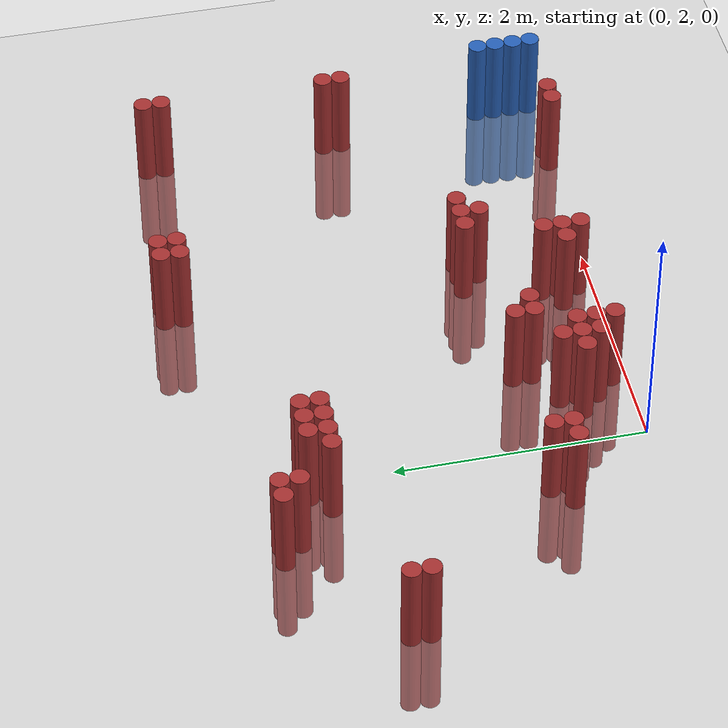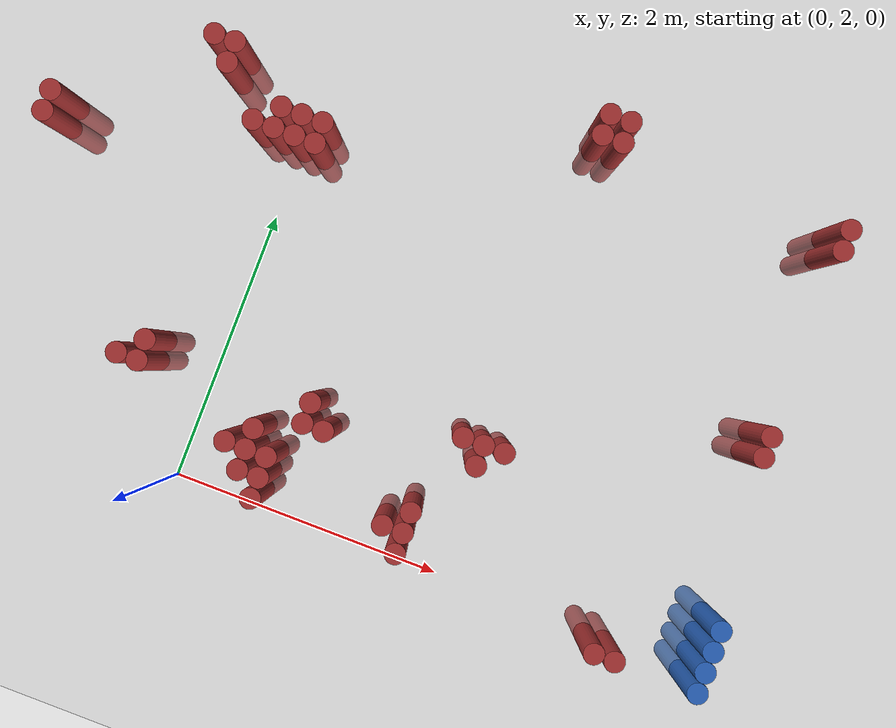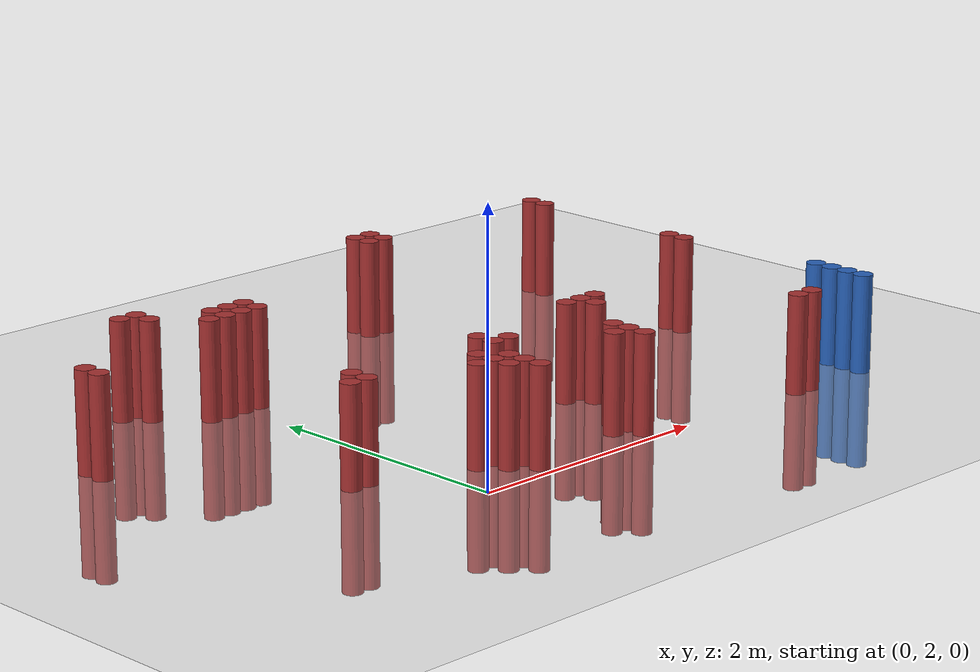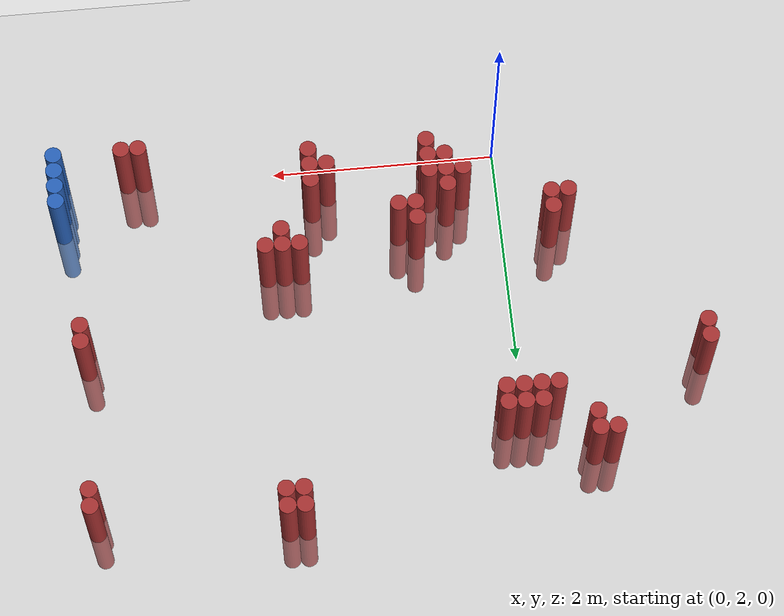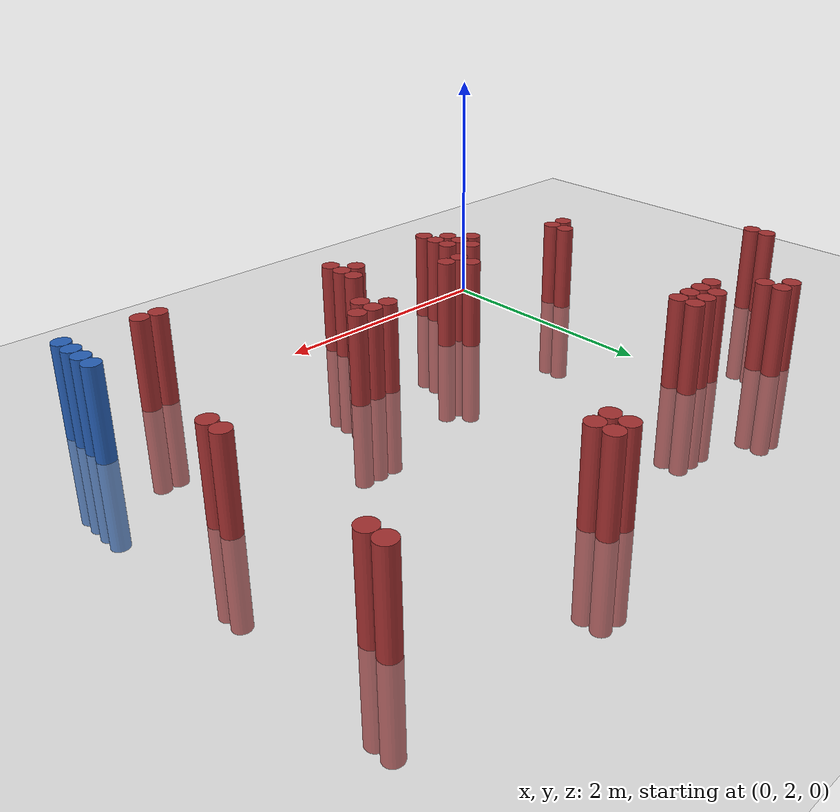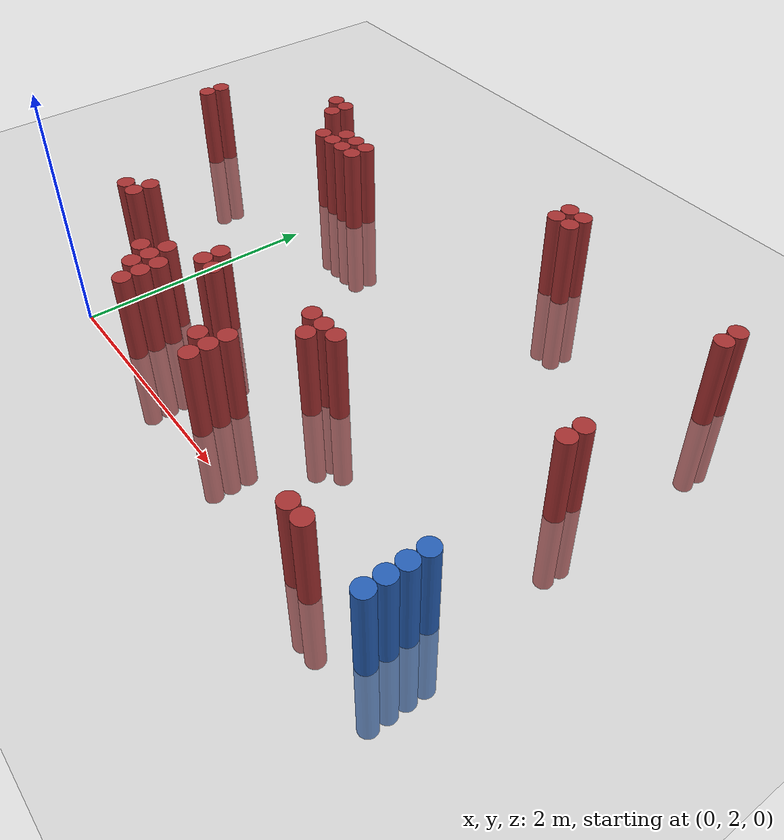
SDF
<sdf version="1.6">
 <world name="default">
  <model name="ground_plane">
   <static>1</static>
   <link name="link">
    <collision name="collision">
     <geometry><plane><normal>0 0 1</normal><size>100 100</size></plane></geometry>
     <surface><friction><ode><mu>100</mu><mu2>50</mu2></ode></friction></surface>
    </collision>
    <visual name="visual">
     <cast_shadows>0</cast_shadows>
     <geometry><plane><normal>0 0 1</normal><size>100 100</size></plane></geometry>
     <material>
      <script><uri>file://media/materials/scripts/gazebo.material</uri><name>Gazebo/Grey</name></script>
     </material>
    </visual>
   </link>
  </model>
  <model name="unit_cylinder_140">
   <static>1</static>
   <pose>3.925000 1.975000 0.000000 0.000000 0.000000 0.000000</pose>
   <link name="link">
    <inertial>
     <mass>1</mass>
     <inertia><ixx>0.145833</ixx><ixy>0</ixy><ixz>0</ixz><iyy>0.145833</iyy><iyz>0</iyz><izz>0.125</izz></inertia>
    </inertial>
    <collision name="collision">
     <geometry><cylinder><radius>0.075000</radius><length>1.5</length></cylinder></geometry>
    </collision>
    <visual name="visual">
     <geometry><cylinder><radius>0.075000</radius><length>1.5</length></cylinder></geometry>
     <material>
      <ambient>0.152000 0.379000 0.720000 1</ambient>
      <diffuse>0.152000 0.379000 0.720000 1</diffuse>
     </material>
     <material>
      <script><name>Gazebo/Grey</name><uri>file://media/materials/scripts/gazebo.material</uri></script>
     </material>
    </visual>
   </link>
  </model>
  <model name="unit_cylinder_142">
   <static>1</static>
   <pose>3.925000 2.125000 0.000000 0.000000 0.000000 0.000000</pose>
   <link name="link">
    <inertial>
     <mass>1</mass>
     <inertia><ixx>0.145833</ixx><ixy>0</ixy><ixz>0</ixz><iyy>0.145833</iyy><iyz>0</iyz><izz>0.125</izz></inertia>
    </inertial>
    <collision name="collision">
     <geometry><cylinder><radius>0.075000</radius><length>1.5</length></cylinder></geometry>
    </collision>
    <visual name="visual">
     <geometry><cylinder><radius>0.075000</radius><length>1.5</length></cylinder></geometry>
     <material>
      <ambient>0.152000 0.379000 0.720000 1</ambient>
      <diffuse>0.152000 0.379000 0.720000 1</diffuse>
     </material>
     <material>
      <script><name>Gazebo/Grey</name><uri>file://media/materials/scripts/gazebo.material</uri></script>
     </material>
    </visual>
   </link>
  </model>
  <model name="unit_cylinder_144">
   <static>1</static>
   <pose>3.925000 2.275000 0.000000 0.000000 0.000000 0.000000</pose>
   <link name="link">
    <inertial>
     <mass>1</mass>
     <inertia><ixx>0.145833</ixx><ixy>0</ixy><ixz>0</ixz><iyy>0.145833</iyy><iyz>0</iyz><izz>0.125</izz></inertia>
    </inertial>
    <collision name="collision">
     <geometry><cylinder><radius>0.075000</radius><length>1.5</length></cylinder></geometry>
    </collision>
    <visual name="visual">
     <geometry><cylinder><radius>0.075000</radius><length>1.5</length></cylinder></geometry>
     <material>
      <ambient>0.152000 0.379000 0.720000 1</ambient>
      <diffuse>0.152000 0.379000 0.720000 1</diffuse>
     </material>
     <material>
      <script><name>Gazebo/Grey</name><uri>file://media/materials/scripts/gazebo.material</uri></script>
     </material>
    </visual>
   </link>
  </model>
  <model name="unit_cylinder_146">
   <static>1</static>
   <pose>3.925000 2.425000 0.000000 0.000000 0.000000 0.000000</pose>
   <link name="link">
    <inertial>
     <mass>1</mass>
     <inertia><ixx>0.145833</ixx><ixy>0</ixy><ixz>0</ixz><iyy>0.145833</iyy><iyz>0</iyz><izz>0.125</izz></inertia>
    </inertial>
    <collision name="collision">
     <geometry><cylinder><radius>0.075000</radius><length>1.5</length></cylinder></geometry>
    </collision>
    <visual name="visual">
     <geometry><cylinder><radius>0.075000</radius><length>1.5</length></cylinder></geometry>
     <material>
      <ambient>0.152000 0.379000 0.720000 1</ambient>
      <diffuse>0.152000 0.379000 0.720000 1</diffuse>
     </material>
     <material>
      <script><name>Gazebo/Grey</name><uri>file://media/materials/scripts/gazebo.material</uri></script>
     </material>
    </visual>
   </link>
  </model>
  <model name="unit_cylinder_312">
   <static>1</static>
   <pose>-1.625000 4.075000 0.000000 0.000000 0.000000 0.000000</pose>
   <link name="link">
    <inertial>
     <mass>1</mass>
     <inertia><ixx>0.145833</ixx><ixy>0</ixy><ixz>0</ixz><iyy>0.145833</iyy><iyz>0</iyz><izz>0.125</izz></inertia>
    </inertial>
    <collision name="collision">
     <geometry><cylinder><radius>0.075000</radius><length>1.5</length></cylinder></geometry>
    </collision>
    <visual name="visual">
     <geometry><cylinder><radius>0.075000</radius><length>1.5</length></cylinder></geometry>
     <material>
      <ambient>0.648000 0.192000 0.192000 1</ambient>
      <diffuse>0.648000 0.192000 0.192000 1</diffuse>
     </material>
     <material>
      <script><name>Gazebo/Grey</name><uri>file://media/materials/scripts/gazebo.material</uri></script>
     </material>
    </visual>
   </link>
  </model>
  <model name="unit_cylinder_313">
   <static>1</static>
   <pose>-1.625000 4.225000 0.000000 0.000000 0.000000 0.000000</pose>
   <link name="link">
    <inertial>
     <mass>1</mass>
     <inertia><ixx>0.145833</ixx><ixy>0</ixy><ixz>0</ixz><iyy>0.145833</iyy><iyz>0</iyz><izz>0.125</izz></inertia>
    </inertial>
    <collision name="collision">
     <geometry><cylinder><radius>0.075000</radius><length>1.5</length></cylinder></geometry>
    </collision>
    <visual name="visual">
     <geometry><cylinder><radius>0.075000</radius><length>1.5</length></cylinder></geometry>
     <material>
      <ambient>0.648000 0.192000 0.192000 1</ambient>
      <diffuse>0.648000 0.192000 0.192000 1</diffuse>
     </material>
     <material>
      <script><name>Gazebo/Grey</name><uri>file://media/materials/scripts/gazebo.material</uri></script>
     </material>
    </visual>
   </link>
  </model>
  <model name="unit_cylinder_315">
   <static>1</static>
   <pose>-0.725000 4.975000 0.000000 0.000000 0.000000 0.000000</pose>
   <link name="link">
    <inertial>
     <mass>1</mass>
     <inertia><ixx>0.145833</ixx><ixy>0</ixy><ixz>0</ixz><iyy>0.145833</iyy><iyz>0</iyz><izz>0.125</izz></inertia>
    </inertial>
    <collision name="collision">
     <geometry><cylinder><radius>0.075000</radius><length>1.5</length></cylinder></geometry>
    </collision>
    <visual name="visual">
     <geometry><cylinder><radius>0.075000</radius><length>1.5</length></cylinder></geometry>
     <material>
      <ambient>0.648000 0.192000 0.192000 1</ambient>
      <diffuse>0.648000 0.192000 0.192000 1</diffuse>
     </material>
     <material>
      <script><name>Gazebo/Grey</name><uri>file://media/materials/scripts/gazebo.material</uri></script>
     </material>
    </visual>
   </link>
  </model>
  <model name="unit_cylinder_316">
   <static>1</static>
   <pose>-0.575000 2.725000 0.000000 0.000000 0.000000 0.000000</pose>
   <link name="link">
    <inertial>
     <mass>1</mass>
     <inertia><ixx>0.145833</ixx><ixy>0</ixy><ixz>0</ixz><iyy>0.145833</iyy><iyz>0</iyz><izz>0.125</izz></inertia>
    </inertial>
    <collision name="collision">
     <geometry><cylinder><radius>0.075000</radius><length>1.5</length></cylinder></geometry>
    </collision>
    <visual name="visual">
     <geometry><cylinder><radius>0.075000</radius><length>1.5</length></cylinder></geometry>
     <material>
      <ambient>0.648000 0.192000 0.192000 1</ambient>
      <diffuse>0.648000 0.192000 0.192000 1</diffuse>
     </material>
     <material>
      <script><name>Gazebo/Grey</name><uri>file://media/materials/scripts/gazebo.material</uri></script>
     </material>
    </visual>
   </link>
  </model>
  <model name="unit_cylinder_317">
   <static>1</static>
   <pose>-0.575000 4.825000 0.000000 0.000000 0.000000 0.000000</pose>
   <link name="link">
    <inertial>
     <mass>1</mass>
     <inertia><ixx>0.145833</ixx><ixy>0</ixy><ixz>0</ixz><iyy>0.145833</iyy><iyz>0</iyz><izz>0.125</izz></inertia>
    </inertial>
    <collision name="collision">
     <geometry><cylinder><radius>0.075000</radius><length>1.5</length></cylinder></geometry>
    </collision>
    <visual name="visual">
     <geometry><cylinder><radius>0.075000</radius><length>1.5</length></cylinder></geometry>
     <material>
      <ambient>0.648000 0.192000 0.192000 1</ambient>
      <diffuse>0.648000 0.192000 0.192000 1</diffuse>
     </material>
     <material>
      <script><name>Gazebo/Grey</name><uri>file://media/materials/scripts/gazebo.material</uri></script>
     </material>
    </visual>
   </link>
  </model>
  <model name="unit_cylinder_318">
   <static>1</static>
   <pose>-0.575000 4.975000 0.000000 0.000000 0.000000 0.000000</pose>
   <link name="link">
    <inertial>
     <mass>1</mass>
     <inertia><ixx>0.145833</ixx><ixy>0</ixy><ixz>0</ixz><iyy>0.145833</iyy><iyz>0</iyz><izz>0.125</izz></inertia>
    </inertial>
    <collision name="collision">
     <geometry><cylinder><radius>0.075000</radius><length>1.5</length></cylinder></geometry>
    </collision>
    <visual name="visual">
     <geometry><cylinder><radius>0.075000</radius><length>1.5</length></cylinder></geometry>
     <material>
      <ambient>0.648000 0.192000 0.192000 1</ambient>
      <diffuse>0.648000 0.192000 0.192000 1</diffuse>
     </material>
     <material>
      <script><name>Gazebo/Grey</name><uri>file://media/materials/scripts/gazebo.material</uri></script>
     </material>
    </visual>
   </link>
  </model>
  <model name="unit_cylinder_319">
   <static>1</static>
   <pose>-0.425000 2.725000 0.000000 0.000000 0.000000 0.000000</pose>
   <link name="link">
    <inertial>
     <mass>1</mass>
     <inertia><ixx>0.145833</ixx><ixy>0</ixy><ixz>0</ixz><iyy>0.145833</iyy><iyz>0</iyz><izz>0.125</izz></inertia>
    </inertial>
    <collision name="collision">
     <geometry><cylinder><radius>0.075000</radius><length>1.5</length></cylinder></geometry>
    </collision>
    <visual name="visual">
     <geometry><cylinder><radius>0.075000</radius><length>1.5</length></cylinder></geometry>
     <material>
      <ambient>0.648000 0.192000 0.192000 1</ambient>
      <diffuse>0.648000 0.192000 0.192000 1</diffuse>
     </material>
     <material>
      <script><name>Gazebo/Grey</name><uri>file://media/materials/scripts/gazebo.material</uri></script>
     </material>
    </visual>
   </link>
  </model>
  <model name="unit_cylinder_320">
   <static>1</static>
   <pose>-0.425000 2.875000 0.000000 0.000000 0.000000 0.000000</pose>
   <link name="link">
    <inertial>
     <mass>1</mass>
     <inertia><ixx>0.145833</ixx><ixy>0</ixy><ixz>0</ixz><iyy>0.145833</iyy><iyz>0</iyz><izz>0.125</izz></inertia>
    </inertial>
    <collision name="collision">
     <geometry><cylinder><radius>0.075000</radius><length>1.5</length></cylinder></geometry>
    </collision>
    <visual name="visual">
     <geometry><cylinder><radius>0.075000</radius><length>1.5</length></cylinder></geometry>
     <material>
      <ambient>0.648000 0.192000 0.192000 1</ambient>
      <diffuse>0.648000 0.192000 0.192000 1</diffuse>
     </material>
     <material>
      <script><name>Gazebo/Grey</name><uri>file://media/materials/scripts/gazebo.material</uri></script>
     </material>
    </visual>
   </link>
  </model>
  <model name="unit_cylinder_321">
   <static>1</static>
   <pose>-0.275000 4.525000 0.000000 0.000000 0.000000 0.000000</pose>
   <link name="link">
    <inertial>
     <mass>1</mass>
     <inertia><ixx>0.145833</ixx><ixy>0</ixy><ixz>0</ixz><iyy>0.145833</iyy><iyz>0</iyz><izz>0.125</izz></inertia>
    </inertial>
    <collision name="collision">
     <geometry><cylinder><radius>0.075000</radius><length>1.5</length></cylinder></geometry>
    </collision>
    <visual name="visual">
     <geometry><cylinder><radius>0.075000</radius><length>1.5</length></cylinder></geometry>
     <material>
      <ambient>0.648000 0.192000 0.192000 1</ambient>
      <diffuse>0.648000 0.192000 0.192000 1</diffuse>
     </material>
     <material>
      <script><name>Gazebo/Grey</name><uri>file://media/materials/scripts/gazebo.material</uri></script>
     </material>
    </visual>
   </link>
  </model>
  <model name="unit_cylinder_322">
   <static>1</static>
   <pose>-0.125000 4.525000 0.000000 0.000000 0.000000 0.000000</pose>
   <link name="link">
    <inertial>
     <mass>1</mass>
     <inertia><ixx>0.145833</ixx><ixy>0</ixy><ixz>0</ixz><iyy>0.145833</iyy><iyz>0</iyz><izz>0.125</izz></inertia>
    </inertial>
    <collision name="collision">
     <geometry><cylinder><radius>0.075000</radius><length>1.5</length></cylinder></geometry>
    </collision>
    <visual name="visual">
     <geometry><cylinder><radius>0.075000</radius><length>1.5</length></cylinder></geometry>
     <material>
      <ambient>0.648000 0.192000 0.192000 1</ambient>
      <diffuse>0.648000 0.192000 0.192000 1</diffuse>
     </material>
     <material>
      <script><name>Gazebo/Grey</name><uri>file://media/materials/scripts/gazebo.material</uri></script>
     </material>
    </visual>
   </link>
  </model>
  <model name="unit_cylinder_323">
   <static>1</static>
   <pose>-0.125000 4.675000 0.000000 0.000000 0.000000 0.000000</pose>
   <link name="link">
    <inertial>
     <mass>1</mass>
     <inertia><ixx>0.145833</ixx><ixy>0</ixy><ixz>0</ixz><iyy>0.145833</iyy><iyz>0</iyz><izz>0.125</izz></inertia>
    </inertial>
    <collision name="collision">
     <geometry><cylinder><radius>0.075000</radius><length>1.5</length></cylinder></geometry>
    </collision>
    <visual name="visual">
     <geometry><cylinder><radius>0.075000</radius><length>1.5</length></cylinder></geometry>
     <material>
      <ambient>0.648000 0.192000 0.192000 1</ambient>
      <diffuse>0.648000 0.192000 0.192000 1</diffuse>
     </material>
     <material>
      <script><name>Gazebo/Grey</name><uri>file://media/materials/scripts/gazebo.material</uri></script>
     </material>
    </visual>
   </link>
  </model>
  <model name="unit_cylinder_325">
   <static>1</static>
   <pose>0.025000 4.525000 0.000000 0.000000 0.000000 0.000000</pose>
   <link name="link">
    <inertial>
     <mass>1</mass>
     <inertia><ixx>0.145833</ixx><ixy>0</ixy><ixz>0</ixz><iyy>0.145833</iyy><iyz>0</iyz><izz>0.125</izz></inertia>
    </inertial>
    <collision name="collision">
     <geometry><cylinder><radius>0.075000</radius><length>1.5</length></cylinder></geometry>
    </collision>
    <visual name="visual">
     <geometry><cylinder><radius>0.075000</radius><length>1.5</length></cylinder></geometry>
     <material>
      <ambient>0.648000 0.192000 0.192000 1</ambient>
      <diffuse>0.648000 0.192000 0.192000 1</diffuse>
     </material>
     <material>
      <script><name>Gazebo/Grey</name><uri>file://media/materials/scripts/gazebo.material</uri></script>
     </material>
    </visual>
   </link>
  </model>
  <model name="unit_cylinder_326">
   <static>1</static>
   <pose>0.025000 4.675000 0.000000 0.000000 0.000000 0.000000</pose>
   <link name="link">
    <inertial>
     <mass>1</mass>
     <inertia><ixx>0.145833</ixx><ixy>0</ixy><ixz>0</ixz><iyy>0.145833</iyy><iyz>0</iyz><izz>0.125</izz></inertia>
    </inertial>
    <collision name="collision">
     <geometry><cylinder><radius>0.075000</radius><length>1.5</length></cylinder></geometry>
    </collision>
    <visual name="visual">
     <geometry><cylinder><radius>0.075000</radius><length>1.5</length></cylinder></geometry>
     <material>
      <ambient>0.648000 0.192000 0.192000 1</ambient>
      <diffuse>0.648000 0.192000 0.192000 1</diffuse>
     </material>
     <material>
      <script><name>Gazebo/Grey</name><uri>file://media/materials/scripts/gazebo.material</uri></script>
     </material>
    </visual>
   </link>
  </model>
  <model name="unit_cylinder_329">
   <static>1</static>
   <pose>0.175000 4.525000 0.000000 0.000000 0.000000 0.000000</pose>
   <link name="link">
    <inertial>
     <mass>1</mass>
     <inertia><ixx>0.145833</ixx><ixy>0</ixy><ixz>0</ixz><iyy>0.145833</iyy><iyz>0</iyz><izz>0.125</izz></inertia>
    </inertial>
    <collision name="collision">
     <geometry><cylinder><radius>0.075000</radius><length>1.5</length></cylinder></geometry>
    </collision>
    <visual name="visual">
     <geometry><cylinder><radius>0.075000</radius><length>1.5</length></cylinder></geometry>
     <material>
      <ambient>0.648000 0.192000 0.192000 1</ambient>
      <diffuse>0.648000 0.192000 0.192000 1</diffuse>
     </material>
     <material>
      <script><name>Gazebo/Grey</name><uri>file://media/materials/scripts/gazebo.material</uri></script>
     </material>
    </visual>
   </link>
  </model>
  <model name="unit_cylinder_330">
   <static>1</static>
   <pose>0.175000 4.675000 0.000000 0.000000 0.000000 0.000000</pose>
   <link name="link">
    <inertial>
     <mass>1</mass>
     <inertia><ixx>0.145833</ixx><ixy>0</ixy><ixz>0</ixz><iyy>0.145833</iyy><iyz>0</iyz><izz>0.125</izz></inertia>
    </inertial>
    <collision name="collision">
     <geometry><cylinder><radius>0.075000</radius><length>1.5</length></cylinder></geometry>
    </collision>
    <visual name="visual">
     <geometry><cylinder><radius>0.075000</radius><length>1.5</length></cylinder></geometry>
     <material>
      <ambient>0.648000 0.192000 0.192000 1</ambient>
      <diffuse>0.648000 0.192000 0.192000 1</diffuse>
     </material>
     <material>
      <script><name>Gazebo/Grey</name><uri>file://media/materials/scripts/gazebo.material</uri></script>
     </material>
    </visual>
   </link>
  </model>
  <model name="unit_cylinder_331">
   <static>1</static>
   <pose>0.325000 2.425000 0.000000 0.000000 0.000000 0.000000</pose>
   <link name="link">
    <inertial>
     <mass>1</mass>
     <inertia><ixx>0.145833</ixx><ixy>0</ixy><ixz>0</ixz><iyy>0.145833</iyy><iyz>0</iyz><izz>0.125</izz></inertia>
    </inertial>
    <collision name="collision">
     <geometry><cylinder><radius>0.075000</radius><length>1.5</length></cylinder></geometry>
    </collision>
    <visual name="visual">
     <geometry><cylinder><radius>0.075000</radius><length>1.5</length></cylinder></geometry>
     <material>
      <ambient>0.648000 0.192000 0.192000 1</ambient>
      <diffuse>0.648000 0.192000 0.192000 1</diffuse>
     </material>
     <material>
      <script><name>Gazebo/Grey</name><uri>file://media/materials/scripts/gazebo.material</uri></script>
     </material>
    </visual>
   </link>
  </model>
  <model name="unit_cylinder_332">
   <static>1</static>
   <pose>0.475000 2.275000 0.000000 0.000000 0.000000 0.000000</pose>
   <link name="link">
    <inertial>
     <mass>1</mass>
     <inertia><ixx>0.145833</ixx><ixy>0</ixy><ixz>0</ixz><iyy>0.145833</iyy><iyz>0</iyz><izz>0.125</izz></inertia>
    </inertial>
    <collision name="collision">
     <geometry><cylinder><radius>0.075000</radius><length>1.5</length></cylinder></geometry>
    </collision>
    <visual name="visual">
     <geometry><cylinder><radius>0.075000</radius><length>1.5</length></cylinder></geometry>
     <material>
      <ambient>0.648000 0.192000 0.192000 1</ambient>
      <diffuse>0.648000 0.192000 0.192000 1</diffuse>
     </material>
     <material>
      <script><name>Gazebo/Grey</name><uri>file://media/materials/scripts/gazebo.material</uri></script>
     </material>
    </visual>
   </link>
  </model>
  <model name="unit_cylinder_333">
   <static>1</static>
   <pose>0.475000 2.425000 0.000000 0.000000 0.000000 0.000000</pose>
   <link name="link">
    <inertial>
     <mass>1</mass>
     <inertia><ixx>0.145833</ixx><ixy>0</ixy><ixz>0</ixz><iyy>0.145833</iyy><iyz>0</iyz><izz>0.125</izz></inertia>
    </inertial>
    <collision name="collision">
     <geometry><cylinder><radius>0.075000</radius><length>1.5</length></cylinder></geometry>
    </collision>
    <visual name="visual">
     <geometry><cylinder><radius>0.075000</radius><length>1.5</length></cylinder></geometry>
     <material>
      <ambient>0.648000 0.192000 0.192000 1</ambient>
      <diffuse>0.648000 0.192000 0.192000 1</diffuse>
     </material>
     <material>
      <script><name>Gazebo/Grey</name><uri>file://media/materials/scripts/gazebo.material</uri></script>
     </material>
    </visual>
   </link>
  </model>
  <model name="unit_cylinder_334">
   <static>1</static>
   <pose>0.475000 2.575000 0.000000 0.000000 0.000000 0.000000</pose>
   <link name="link">
    <inertial>
     <mass>1</mass>
     <inertia><ixx>0.145833</ixx><ixy>0</ixy><ixz>0</ixz><iyy>0.145833</iyy><iyz>0</iyz><izz>0.125</izz></inertia>
    </inertial>
    <collision name="collision">
     <geometry><cylinder><radius>0.075000</radius><length>1.5</length></cylinder></geometry>
    </collision>
    <visual name="visual">
     <geometry><cylinder><radius>0.075000</radius><length>1.5</length></cylinder></geometry>
     <material>
      <ambient>0.648000 0.192000 0.192000 1</ambient>
      <diffuse>0.648000 0.192000 0.192000 1</diffuse>
     </material>
     <material>
      <script><name>Gazebo/Grey</name><uri>file://media/materials/scripts/gazebo.material</uri></script>
     </material>
    </visual>
   </link>
  </model>
  <model name="unit_cylinder_336">
   <static>1</static>
   <pose>0.625000 2.125000 0.000000 0.000000 0.000000 0.000000</pose>
   <link name="link">
    <inertial>
     <mass>1</mass>
     <inertia><ixx>0.145833</ixx><ixy>0</ixy><ixz>0</ixz><iyy>0.145833</iyy><iyz>0</iyz><izz>0.125</izz></inertia>
    </inertial>
    <collision name="collision">
     <geometry><cylinder><radius>0.075000</radius><length>1.5</length></cylinder></geometry>
    </collision>
    <visual name="visual">
     <geometry><cylinder><radius>0.075000</radius><length>1.5</length></cylinder></geometry>
     <material>
      <ambient>0.648000 0.192000 0.192000 1</ambient>
      <diffuse>0.648000 0.192000 0.192000 1</diffuse>
     </material>
     <material>
      <script><name>Gazebo/Grey</name><uri>file://media/materials/scripts/gazebo.material</uri></script>
     </material>
    </visual>
   </link>
  </model>
  <model name="unit_cylinder_337">
   <static>1</static>
   <pose>0.625000 2.275000 0.000000 0.000000 0.000000 0.000000</pose>
   <link name="link">
    <inertial>
     <mass>1</mass>
     <inertia><ixx>0.145833</ixx><ixy>0</ixy><ixz>0</ixz><iyy>0.145833</iyy><iyz>0</iyz><izz>0.125</izz></inertia>
    </inertial>
    <collision name="collision">
     <geometry><cylinder><radius>0.075000</radius><length>1.5</length></cylinder></geometry>
    </collision>
    <visual name="visual">
     <geometry><cylinder><radius>0.075000</radius><length>1.5</length></cylinder></geometry>
     <material>
      <ambient>0.648000 0.192000 0.192000 1</ambient>
      <diffuse>0.648000 0.192000 0.192000 1</diffuse>
     </material>
     <material>
      <script><name>Gazebo/Grey</name><uri>file://media/materials/scripts/gazebo.material</uri></script>
     </material>
    </visual>
   </link>
  </model>
  <model name="unit_cylinder_338">
   <static>1</static>
   <pose>0.625000 2.425000 0.000000 0.000000 0.000000 0.000000</pose>
   <link name="link">
    <inertial>
     <mass>1</mass>
     <inertia><ixx>0.145833</ixx><ixy>0</ixy><ixz>0</ixz><iyy>0.145833</iyy><iyz>0</iyz><izz>0.125</izz></inertia>
    </inertial>
    <collision name="collision">
     <geometry><cylinder><radius>0.075000</radius><length>1.5</length></cylinder></geometry>
    </collision>
    <visual name="visual">
     <geometry><cylinder><radius>0.075000</radius><length>1.5</length></cylinder></geometry>
     <material>
      <ambient>0.648000 0.192000 0.192000 1</ambient>
      <diffuse>0.648000 0.192000 0.192000 1</diffuse>
     </material>
     <material>
      <script><name>Gazebo/Grey</name><uri>file://media/materials/scripts/gazebo.material</uri></script>
     </material>
    </visual>
   </link>
  </model>
  <model name="unit_cylinder_341">
   <static>1</static>
   <pose>0.775000 2.725000 0.000000 0.000000 0.000000 0.000000</pose>
   <link name="link">
    <inertial>
     <mass>1</mass>
     <inertia><ixx>0.145833</ixx><ixy>0</ixy><ixz>0</ixz><iyy>0.145833</iyy><iyz>0</iyz><izz>0.125</izz></inertia>
    </inertial>
    <collision name="collision">
     <geometry><cylinder><radius>0.075000</radius><length>1.5</length></cylinder></geometry>
    </collision>
    <visual name="visual">
     <geometry><cylinder><radius>0.075000</radius><length>1.5</length></cylinder></geometry>
     <material>
      <ambient>0.648000 0.192000 0.192000 1</ambient>
      <diffuse>0.648000 0.192000 0.192000 1</diffuse>
     </material>
     <material>
      <script><name>Gazebo/Grey</name><uri>file://media/materials/scripts/gazebo.material</uri></script>
     </material>
    </visual>
   </link>
  </model>
  <model name="unit_cylinder_342">
   <static>1</static>
   <pose>0.775000 2.875000 0.000000 0.000000 0.000000 0.000000</pose>
   <link name="link">
    <inertial>
     <mass>1</mass>
     <inertia><ixx>0.145833</ixx><ixy>0</ixy><ixz>0</ixz><iyy>0.145833</iyy><iyz>0</iyz><izz>0.125</izz></inertia>
    </inertial>
    <collision name="collision">
     <geometry><cylinder><radius>0.075000</radius><length>1.5</length></cylinder></geometry>
    </collision>
    <visual name="visual">
     <geometry><cylinder><radius>0.075000</radius><length>1.5</length></cylinder></geometry>
     <material>
      <ambient>0.648000 0.192000 0.192000 1</ambient>
      <diffuse>0.648000 0.192000 0.192000 1</diffuse>
     </material>
     <material>
      <script><name>Gazebo/Grey</name><uri>file://media/materials/scripts/gazebo.material</uri></script>
     </material>
    </visual>
   </link>
  </model>
  <model name="unit_cylinder_347">
   <static>1</static>
   <pose>0.925000 2.725000 0.000000 0.000000 0.000000 0.000000</pose>
   <link name="link">
    <inertial>
     <mass>1</mass>
     <inertia><ixx>0.145833</ixx><ixy>0</ixy><ixz>0</ixz><iyy>0.145833</iyy><iyz>0</iyz><izz>0.125</izz></inertia>
    </inertial>
    <collision name="collision">
     <geometry><cylinder><radius>0.075000</radius><length>1.5</length></cylinder></geometry>
    </collision>
    <visual name="visual">
     <geometry><cylinder><radius>0.075000</radius><length>1.5</length></cylinder></geometry>
     <material>
      <ambient>0.648000 0.192000 0.192000 1</ambient>
      <diffuse>0.648000 0.192000 0.192000 1</diffuse>
     </material>
     <material>
      <script><name>Gazebo/Grey</name><uri>file://media/materials/scripts/gazebo.material</uri></script>
     </material>
    </visual>
   </link>
  </model>
  <model name="unit_cylinder_366">
   <static>1</static>
   <pose>1.525000 2.275000 0.000000 0.000000 0.000000 0.000000</pose>
   <link name="link">
    <inertial>
     <mass>1</mass>
     <inertia><ixx>0.145833</ixx><ixy>0</ixy><ixz>0</ixz><iyy>0.145833</iyy><iyz>0</iyz><izz>0.125</izz></inertia>
    </inertial>
    <collision name="collision">
     <geometry><cylinder><radius>0.075000</radius><length>1.5</length></cylinder></geometry>
    </collision>
    <visual name="visual">
     <geometry><cylinder><radius>0.075000</radius><length>1.5</length></cylinder></geometry>
     <material>
      <ambient>0.648000 0.192000 0.192000 1</ambient>
      <diffuse>0.648000 0.192000 0.192000 1</diffuse>
     </material>
     <material>
      <script><name>Gazebo/Grey</name><uri>file://media/materials/scripts/gazebo.material</uri></script>
     </material>
    </visual>
   </link>
  </model>
  <model name="unit_cylinder_370">
   <static>1</static>
   <pose>1.675000 2.125000 0.000000 0.000000 0.000000 0.000000</pose>
   <link name="link">
    <inertial>
     <mass>1</mass>
     <inertia><ixx>0.145833</ixx><ixy>0</ixy><ixz>0</ixz><iyy>0.145833</iyy><iyz>0</iyz><izz>0.125</izz></inertia>
    </inertial>
    <collision name="collision">
     <geometry><cylinder><radius>0.075000</radius><length>1.5</length></cylinder></geometry>
    </collision>
    <visual name="visual">
     <geometry><cylinder><radius>0.075000</radius><length>1.5</length></cylinder></geometry>
     <material>
      <ambient>0.648000 0.192000 0.192000 1</ambient>
      <diffuse>0.648000 0.192000 0.192000 1</diffuse>
     </material>
     <material>
      <script><name>Gazebo/Grey</name><uri>file://media/materials/scripts/gazebo.material</uri></script>
     </material>
    </visual>
   </link>
  </model>
  <model name="unit_cylinder_371">
   <static>1</static>
   <pose>1.675000 2.275000 0.000000 0.000000 0.000000 0.000000</pose>
   <link name="link">
    <inertial>
     <mass>1</mass>
     <inertia><ixx>0.145833</ixx><ixy>0</ixy><ixz>0</ixz><iyy>0.145833</iyy><iyz>0</iyz><izz>0.125</izz></inertia>
    </inertial>
    <collision name="collision">
     <geometry><cylinder><radius>0.075000</radius><length>1.5</length></cylinder></geometry>
    </collision>
    <visual name="visual">
     <geometry><cylinder><radius>0.075000</radius><length>1.5</length></cylinder></geometry>
     <material>
      <ambient>0.648000 0.192000 0.192000 1</ambient>
      <diffuse>0.648000 0.192000 0.192000 1</diffuse>
     </material>
     <material>
      <script><name>Gazebo/Grey</name><uri>file://media/materials/scripts/gazebo.material</uri></script>
     </material>
    </visual>
   </link>
  </model>
  <model name="unit_cylinder_372">
   <static>1</static>
   <pose>1.675000 2.425000 0.000000 0.000000 0.000000 0.000000</pose>
   <link name="link">
    <inertial>
     <mass>1</mass>
     <inertia><ixx>0.145833</ixx><ixy>0</ixy><ixz>0</ixz><iyy>0.145833</iyy><iyz>0</iyz><izz>0.125</izz></inertia>
    </inertial>
    <collision name="collision">
     <geometry><cylinder><radius>0.075000</radius><length>1.5</length></cylinder></geometry>
    </collision>
    <visual name="visual">
     <geometry><cylinder><radius>0.075000</radius><length>1.5</length></cylinder></geometry>
     <material>
      <ambient>0.648000 0.192000 0.192000 1</ambient>
      <diffuse>0.648000 0.192000 0.192000 1</diffuse>
     </material>
     <material>
      <script><name>Gazebo/Grey</name><uri>file://media/materials/scripts/gazebo.material</uri></script>
     </material>
    </visual>
   </link>
  </model>
  <model name="unit_cylinder_378">
   <static>1</static>
   <pose>1.825000 3.025000 0.000000 0.000000 0.000000 0.000000</pose>
   <link name="link">
    <inertial>
     <mass>1</mass>
     <inertia><ixx>0.145833</ixx><ixy>0</ixy><ixz>0</ixz><iyy>0.145833</iyy><iyz>0</iyz><izz>0.125</izz></inertia>
    </inertial>
    <collision name="collision">
     <geometry><cylinder><radius>0.075000</radius><length>1.5</length></cylinder></geometry>
    </collision>
    <visual name="visual">
     <geometry><cylinder><radius>0.075000</radius><length>1.5</length></cylinder></geometry>
     <material>
      <ambient>0.648000 0.192000 0.192000 1</ambient>
      <diffuse>0.648000 0.192000 0.192000 1</diffuse>
     </material>
     <material>
      <script><name>Gazebo/Grey</name><uri>file://media/materials/scripts/gazebo.material</uri></script>
     </material>
    </visual>
   </link>
  </model>
  <model name="unit_cylinder_387">
   <static>1</static>
   <pose>1.975000 2.875000 0.000000 0.000000 0.000000 0.000000</pose>
   <link name="link">
    <inertial>
     <mass>1</mass>
     <inertia><ixx>0.145833</ixx><ixy>0</ixy><ixz>0</ixz><iyy>0.145833</iyy><iyz>0</iyz><izz>0.125</izz></inertia>
    </inertial>
    <collision name="collision">
     <geometry><cylinder><radius>0.075000</radius><length>1.5</length></cylinder></geometry>
    </collision>
    <visual name="visual">
     <geometry><cylinder><radius>0.075000</radius><length>1.5</length></cylinder></geometry>
     <material>
      <ambient>0.648000 0.192000 0.192000 1</ambient>
      <diffuse>0.648000 0.192000 0.192000 1</diffuse>
     </material>
     <material>
      <script><name>Gazebo/Grey</name><uri>file://media/materials/scripts/gazebo.material</uri></script>
     </material>
    </visual>
   </link>
  </model>
  <model name="unit_cylinder_388">
   <static>1</static>
   <pose>1.975000 3.025000 0.000000 0.000000 0.000000 0.000000</pose>
   <link name="link">
    <inertial>
     <mass>1</mass>
     <inertia><ixx>0.145833</ixx><ixy>0</ixy><ixz>0</ixz><iyy>0.145833</iyy><iyz>0</iyz><izz>0.125</izz></inertia>
    </inertial>
    <collision name="collision">
     <geometry><cylinder><radius>0.075000</radius><length>1.5</length></cylinder></geometry>
    </collision>
    <visual name="visual">
     <geometry><cylinder><radius>0.075000</radius><length>1.5</length></cylinder></geometry>
     <material>
      <ambient>0.648000 0.192000 0.192000 1</ambient>
      <diffuse>0.648000 0.192000 0.192000 1</diffuse>
     </material>
     <material>
      <script><name>Gazebo/Grey</name><uri>file://media/materials/scripts/gazebo.material</uri></script>
     </material>
    </visual>
   </link>
  </model>
  <model name="unit_cylinder_389">
   <static>1</static>
   <pose>1.975000 5.275000 0.000000 0.000000 0.000000 0.000000</pose>
   <link name="link">
    <inertial>
     <mass>1</mass>
     <inertia><ixx>0.145833</ixx><ixy>0</ixy><ixz>0</ixz><iyy>0.145833</iyy><iyz>0</iyz><izz>0.125</izz></inertia>
    </inertial>
    <collision name="collision">
     <geometry><cylinder><radius>0.075000</radius><length>1.5</length></cylinder></geometry>
    </collision>
    <visual name="visual">
     <geometry><cylinder><radius>0.075000</radius><length>1.5</length></cylinder></geometry>
     <material>
      <ambient>0.648000 0.192000 0.192000 1</ambient>
      <diffuse>0.648000 0.192000 0.192000 1</diffuse>
     </material>
     <material>
      <script><name>Gazebo/Grey</name><uri>file://media/materials/scripts/gazebo.material</uri></script>
     </material>
    </visual>
   </link>
  </model>
  <model name="unit_cylinder_390">
   <static>1</static>
   <pose>1.975000 5.425000 0.000000 0.000000 0.000000 0.000000</pose>
   <link name="link">
    <inertial>
     <mass>1</mass>
     <inertia><ixx>0.145833</ixx><ixy>0</ixy><ixz>0</ixz><iyy>0.145833</iyy><iyz>0</iyz><izz>0.125</izz></inertia>
    </inertial>
    <collision name="collision">
     <geometry><cylinder><radius>0.075000</radius><length>1.5</length></cylinder></geometry>
    </collision>
    <visual name="visual">
     <geometry><cylinder><radius>0.075000</radius><length>1.5</length></cylinder></geometry>
     <material>
      <ambient>0.648000 0.192000 0.192000 1</ambient>
      <diffuse>0.648000 0.192000 0.192000 1</diffuse>
     </material>
     <material>
      <script><name>Gazebo/Grey</name><uri>file://media/materials/scripts/gazebo.material</uri></script>
     </material>
    </visual>
   </link>
  </model>
  <model name="unit_cylinder_397">
   <static>1</static>
   <pose>2.125000 3.025000 0.000000 0.000000 0.000000 0.000000</pose>
   <link name="link">
    <inertial>
     <mass>1</mass>
     <inertia><ixx>0.145833</ixx><ixy>0</ixy><ixz>0</ixz><iyy>0.145833</iyy><iyz>0</iyz><izz>0.125</izz></inertia>
    </inertial>
    <collision name="collision">
     <geometry><cylinder><radius>0.075000</radius><length>1.5</length></cylinder></geometry>
    </collision>
    <visual name="visual">
     <geometry><cylinder><radius>0.075000</radius><length>1.5</length></cylinder></geometry>
     <material>
      <ambient>0.648000 0.192000 0.192000 1</ambient>
      <diffuse>0.648000 0.192000 0.192000 1</diffuse>
     </material>
     <material>
      <script><name>Gazebo/Grey</name><uri>file://media/materials/scripts/gazebo.material</uri></script>
     </material>
    </visual>
   </link>
  </model>
  <model name="unit_cylinder_398">
   <static>1</static>
   <pose>2.125000 5.275000 0.000000 0.000000 0.000000 0.000000</pose>
   <link name="link">
    <inertial>
     <mass>1</mass>
     <inertia><ixx>0.145833</ixx><ixy>0</ixy><ixz>0</ixz><iyy>0.145833</iyy><iyz>0</iyz><izz>0.125</izz></inertia>
    </inertial>
    <collision name="collision">
     <geometry><cylinder><radius>0.075000</radius><length>1.5</length></cylinder></geometry>
    </collision>
    <visual name="visual">
     <geometry><cylinder><radius>0.075000</radius><length>1.5</length></cylinder></geometry>
     <material>
      <ambient>0.648000 0.192000 0.192000 1</ambient>
      <diffuse>0.648000 0.192000 0.192000 1</diffuse>
     </material>
     <material>
      <script><name>Gazebo/Grey</name><uri>file://media/materials/scripts/gazebo.material</uri></script>
     </material>
    </visual>
   </link>
  </model>
  <model name="unit_cylinder_399">
   <static>1</static>
   <pose>2.125000 5.425000 0.000000 0.000000 0.000000 0.000000</pose>
   <link name="link">
    <inertial>
     <mass>1</mass>
     <inertia><ixx>0.145833</ixx><ixy>0</ixy><ixz>0</ixz><iyy>0.145833</iyy><iyz>0</iyz><izz>0.125</izz></inertia>
    </inertial>
    <collision name="collision">
     <geometry><cylinder><radius>0.075000</radius><length>1.5</length></cylinder></geometry>
    </collision>
    <visual name="visual">
     <geometry><cylinder><radius>0.075000</radius><length>1.5</length></cylinder></geometry>
     <material>
      <ambient>0.648000 0.192000 0.192000 1</ambient>
      <diffuse>0.648000 0.192000 0.192000 1</diffuse>
     </material>
     <material>
      <script><name>Gazebo/Grey</name><uri>file://media/materials/scripts/gazebo.material</uri></script>
     </material>
    </visual>
   </link>
  </model>
  <model name="unit_cylinder_422">
   <static>1</static>
   <pose>3.175000 1.975000 0.000000 0.000000 0.000000 0.000000</pose>
   <link name="link">
    <inertial>
     <mass>1</mass>
     <inertia><ixx>0.145833</ixx><ixy>0</ixy><ixz>0</ixz><iyy>0.145833</iyy><iyz>0</iyz><izz>0.125</izz></inertia>
    </inertial>
    <collision name="collision">
     <geometry><cylinder><radius>0.075000</radius><length>1.5</length></cylinder></geometry>
    </collision>
    <visual name="visual">
     <geometry><cylinder><radius>0.075000</radius><length>1.5</length></cylinder></geometry>
     <material>
      <ambient>0.648000 0.192000 0.192000 1</ambient>
      <diffuse>0.648000 0.192000 0.192000 1</diffuse>
     </material>
     <material>
      <script><name>Gazebo/Grey</name><uri>file://media/materials/scripts/gazebo.material</uri></script>
     </material>
    </visual>
   </link>
  </model>
  <model name="unit_cylinder_427">
   <static>1</static>
   <pose>3.325000 1.975000 0.000000 0.000000 0.000000 0.000000</pose>
   <link name="link">
    <inertial>
     <mass>1</mass>
     <inertia><ixx>0.145833</ixx><ixy>0</ixy><ixz>0</ixz><iyy>0.145833</iyy><iyz>0</iyz><izz>0.125</izz></inertia>
    </inertial>
    <collision name="collision">
     <geometry><cylinder><radius>0.075000</radius><length>1.5</length></cylinder></geometry>
    </collision>
    <visual name="visual">
     <geometry><cylinder><radius>0.075000</radius><length>1.5</length></cylinder></geometry>
     <material>
      <ambient>0.648000 0.192000 0.192000 1</ambient>
      <diffuse>0.648000 0.192000 0.192000 1</diffuse>
     </material>
     <material>
      <script><name>Gazebo/Grey</name><uri>file://media/materials/scripts/gazebo.material</uri></script>
     </material>
    </visual>
   </link>
  </model>
  <model name="unit_cylinder_448">
   <static>1</static>
   <pose>3.775000 3.625000 0.000000 0.000000 0.000000 0.000000</pose>
   <link name="link">
    <inertial>
     <mass>1</mass>
     <inertia><ixx>0.145833</ixx><ixy>0</ixy><ixz>0</ixz><iyy>0.145833</iyy><iyz>0</iyz><izz>0.125</izz></inertia>
    </inertial>
    <collision name="collision">
     <geometry><cylinder><radius>0.075000</radius><length>1.5</length></cylinder></geometry>
    </collision>
    <visual name="visual">
     <geometry><cylinder><radius>0.075000</radius><length>1.5</length></cylinder></geometry>
     <material>
      <ambient>0.648000 0.192000 0.192000 1</ambient>
      <diffuse>0.648000 0.192000 0.192000 1</diffuse>
     </material>
     <material>
      <script><name>Gazebo/Grey</name><uri>file://media/materials/scripts/gazebo.material</uri></script>
     </material>
    </visual>
   </link>
  </model>
  <model name="unit_cylinder_449">
   <static>1</static>
   <pose>3.775000 3.775000 0.000000 0.000000 0.000000 0.000000</pose>
   <link name="link">
    <inertial>
     <mass>1</mass>
     <inertia><ixx>0.145833</ixx><ixy>0</ixy><ixz>0</ixz><iyy>0.145833</iyy><iyz>0</iyz><izz>0.125</izz></inertia>
    </inertial>
    <collision name="collision">
     <geometry><cylinder><radius>0.075000</radius><length>1.5</length></cylinder></geometry>
    </collision>
    <visual name="visual">
     <geometry><cylinder><radius>0.075000</radius><length>1.5</length></cylinder></geometry>
     <material>
      <ambient>0.648000 0.192000 0.192000 1</ambient>
      <diffuse>0.648000 0.192000 0.192000 1</diffuse>
     </material>
     <material>
      <script><name>Gazebo/Grey</name><uri>file://media/materials/scripts/gazebo.material</uri></script>
     </material>
    </visual>
   </link>
  </model>
  <model name="unit_cylinder_450">
   <static>1</static>
   <pose>3.775000 5.125000 0.000000 0.000000 0.000000 0.000000</pose>
   <link name="link">
    <inertial>
     <mass>1</mass>
     <inertia><ixx>0.145833</ixx><ixy>0</ixy><ixz>0</ixz><iyy>0.145833</iyy><iyz>0</iyz><izz>0.125</izz></inertia>
    </inertial>
    <collision name="collision">
     <geometry><cylinder><radius>0.075000</radius><length>1.5</length></cylinder></geometry>
    </collision>
    <visual name="visual">
     <geometry><cylinder><radius>0.075000</radius><length>1.5</length></cylinder></geometry>
     <material>
      <ambient>0.648000 0.192000 0.192000 1</ambient>
      <diffuse>0.648000 0.192000 0.192000 1</diffuse>
     </material>
     <material>
      <script><name>Gazebo/Grey</name><uri>file://media/materials/scripts/gazebo.material</uri></script>
     </material>
    </visual>
   </link>
  </model>
  <model name="unit_cylinder_451">
   <static>1</static>
   <pose>3.775000 5.275000 0.000000 0.000000 0.000000 0.000000</pose>
   <link name="link">
    <inertial>
     <mass>1</mass>
     <inertia><ixx>0.145833</ixx><ixy>0</ixy><ixz>0</ixz><iyy>0.145833</iyy><iyz>0</iyz><izz>0.125</izz></inertia>
    </inertial>
    <collision name="collision">
     <geometry><cylinder><radius>0.075000</radius><length>1.5</length></cylinder></geometry>
    </collision>
    <visual name="visual">
     <geometry><cylinder><radius>0.075000</radius><length>1.5</length></cylinder></geometry>
     <material>
      <ambient>0.648000 0.192000 0.192000 1</ambient>
      <diffuse>0.648000 0.192000 0.192000 1</diffuse>
     </material>
     <material>
      <script><name>Gazebo/Grey</name><uri>file://media/materials/scripts/gazebo.material</uri></script>
     </material>
    </visual>
   </link>
  </model>
  <model name="unit_cylinder_478">
   <static>1</static>
   <pose>3.925000 1.975000 0.000000 0.000000 0.000000 0.000000</pose>
   <link name="link">
    <inertial>
     <mass>1</mass>
     <inertia><ixx>0.145833</ixx><ixy>0</ixy><ixz>0</ixz><iyy>0.145833</iyy><iyz>0</iyz><izz>0.125</izz></inertia>
    </inertial>
    <collision name="collision">
     <geometry><cylinder><radius>0.075000</radius><length>1.5</length></cylinder></geometry>
    </collision>
    <visual name="visual">
     <geometry><cylinder><radius>0.075000</radius><length>1.5</length></cylinder></geometry>
     <material>
      <ambient>0.152000 0.379000 0.720000 1</ambient>
      <diffuse>0.152000 0.379000 0.720000 1</diffuse>
     </material>
     <material>
      <script><name>Gazebo/Grey</name><uri>file://media/materials/scripts/gazebo.material</uri></script>
     </material>
    </visual>
   </link>
  </model>
  <model name="unit_cylinder_479">
   <static>1</static>
   <pose>3.925000 2.125000 0.000000 0.000000 0.000000 0.000000</pose>
   <link name="link">
    <inertial>
     <mass>1</mass>
     <inertia><ixx>0.145833</ixx><ixy>0</ixy><ixz>0</ixz><iyy>0.145833</iyy><iyz>0</iyz><izz>0.125</izz></inertia>
    </inertial>
    <collision name="collision">
     <geometry><cylinder><radius>0.075000</radius><length>1.5</length></cylinder></geometry>
    </collision>
    <visual name="visual">
     <geometry><cylinder><radius>0.075000</radius><length>1.5</length></cylinder></geometry>
     <material>
      <ambient>0.152000 0.379000 0.720000 1</ambient>
      <diffuse>0.152000 0.379000 0.720000 1</diffuse>
     </material>
     <material>
      <script><name>Gazebo/Grey</name><uri>file://media/materials/scripts/gazebo.material</uri></script>
     </material>
    </visual>
   </link>
  </model>
  <model name="unit_cylinder_480">
   <static>1</static>
   <pose>3.925000 2.275000 0.000000 0.000000 0.000000 0.000000</pose>
   <link name="link">
    <inertial>
     <mass>1</mass>
     <inertia><ixx>0.145833</ixx><ixy>0</ixy><ixz>0</ixz><iyy>0.145833</iyy><iyz>0</iyz><izz>0.125</izz></inertia>
    </inertial>
    <collision name="collision">
     <geometry><cylinder><radius>0.075000</radius><length>1.5</length></cylinder></geometry>
    </collision>
    <visual name="visual">
     <geometry><cylinder><radius>0.075000</radius><length>1.5</length></cylinder></geometry>
     <material>
      <ambient>0.152000 0.379000 0.720000 1</ambient>
      <diffuse>0.152000 0.379000 0.720000 1</diffuse>
     </material>
     <material>
      <script><name>Gazebo/Grey</name><uri>file://media/materials/scripts/gazebo.material</uri></script>
     </material>
    </visual>
   </link>
  </model>
 </world>
</sdf>
